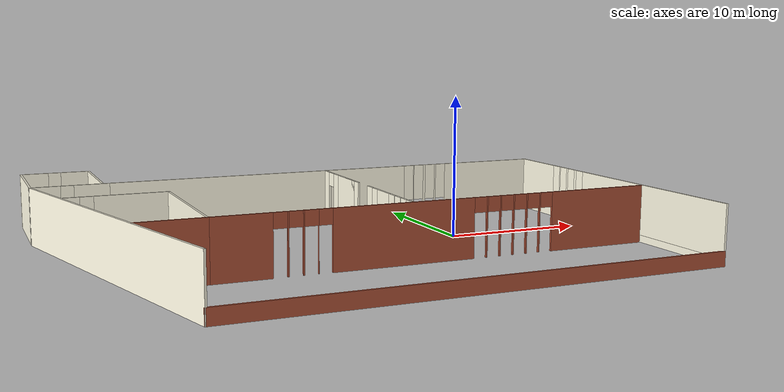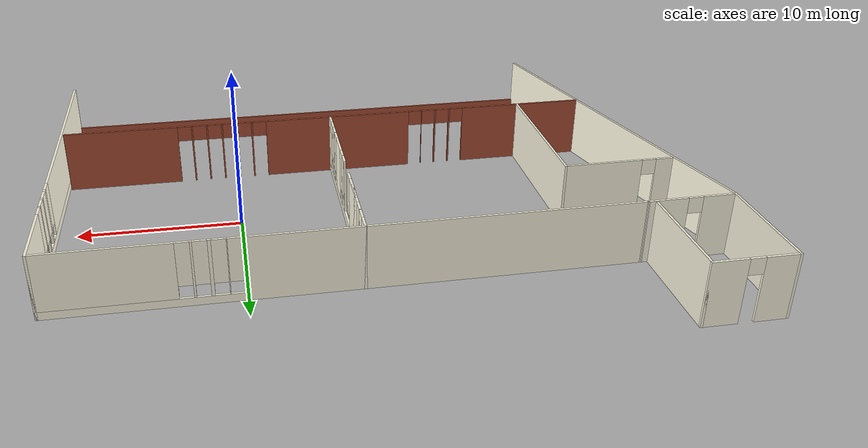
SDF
<?xml version='1.0'?>
<sdf version='1.6'>
  <model name='myoffice'>
    <pose frame=''>-8.43642 0.2686 0 0 -0 0</pose>
    <link name='Wall_0'>
      <pose frame=''>2.68742 8.1604 0 0 -0 0</pose>
      <visual name='Wall_0_Visual_0'>
        <pose frame=''>-5.55834 0 2 0 -0 0</pose>
        <geometry>
          <box>
            <size>22.8833 0.15 4</size>
          </box>
        </geometry>
        <material>
          <script>
            <uri>file://media/materials/scripts/gazebo.material</uri>
            <name>Gazebo/Grey</name>
          </script>
          <ambient>1 0.980392 0.894118 1</ambient>
        </material>
        <meta>
          <layer>0</layer>
        </meta>
      </visual>
      <collision name='Wall_0_Collision_0'>
        <geometry>
          <box>
            <size>22.8833 0.15 4</size>
          </box>
        </geometry>
        <pose frame=''>-5.55834 0 2 0 -0 0</pose>
      </collision>
      <visual name='Wall_0_Visual_1'>
        <pose frame=''>11.4417 0 0.25 0 -0 0</pose>
        <geometry>
          <box>
            <size>11.1167 0.15 0.5</size>
          </box>
        </geometry>
        <material>
          <script>
            <uri>file://media/materials/scripts/gazebo.material</uri>
            <name>Gazebo/Grey</name>
          </script>
          <ambient>1 0.980392 0.894118 1</ambient>
        </material>
        <meta>
          <layer>0</layer>
        </meta>
      </visual>
      <collision name='Wall_0_Collision_1'>
        <geometry>
          <box>
            <size>11.1167 0.15 0.5</size>
          </box>
        </geometry>
        <pose frame=''>11.4417 0 0.25 0 -0 0</pose>
      </collision>
      <visual name='Wall_0_Visual_2'>
        <pose frame=''>6.70786 0 2.25 0 -0 0</pose>
        <geometry>
          <box>
            <size>0.049085 0.15 3.5</size>
          </box>
        </geometry>
        <material>
          <script>
            <uri>file://media/materials/scripts/gazebo.material</uri>
            <name>Gazebo/Grey</name>
          </script>
          <ambient>1 0.980392 0.894118 1</ambient>
        </material>
        <meta>
          <layer>0</layer>
        </meta>
      </visual>
      <collision name='Wall_0_Collision_2'>
        <geometry>
          <box>
            <size>0.049085 0.15 3.5</size>
          </box>
        </geometry>
        <pose frame=''>6.70786 0 2.25 0 -0 0</pose>
      </collision>
      <visual name='Wall_0_Visual_3'>
        <pose frame=''>7.6277 0 2.25 0 -0 0</pose>
        <geometry>
          <box>
            <size>0.190599 0.15 3.5</size>
          </box>
        </geometry>
        <material>
          <script>
            <uri>file://media/materials/scripts/gazebo.material</uri>
            <name>Gazebo/Grey</name>
          </script>
          <ambient>1 0.980392 0.894118 1</ambient>
        </material>
        <meta>
          <layer>0</layer>
        </meta>
      </visual>
      <collision name='Wall_0_Collision_3'>
        <geometry>
          <box>
            <size>0.190599 0.15 3.5</size>
          </box>
        </geometry>
        <pose frame=''>7.6277 0 2.25 0 -0 0</pose>
      </collision>
      <visual name='Wall_0_Visual_4'>
        <pose frame=''>8.58292 0 2.25 0 -0 0</pose>
        <geometry>
          <box>
            <size>0.119842 0.15 3.5</size>
          </box>
        </geometry>
        <material>
          <script>
            <uri>file://media/materials/scripts/gazebo.material</uri>
            <name>Gazebo/Grey</name>
          </script>
          <ambient>1 0.980392 0.894118 1</ambient>
        </material>
        <meta>
          <layer>0</layer>
        </meta>
      </visual>
      <collision name='Wall_0_Collision_4'>
        <geometry>
          <box>
            <size>0.119842 0.15 3.5</size>
          </box>
        </geometry>
        <pose frame=''>8.58292 0 2.25 0 -0 0</pose>
      </collision>
      <visual name='Wall_0_Visual_5'>
        <pose frame=''>13.2214 0 2.25 0 -0 0</pose>
        <geometry>
          <box>
            <size>7.55716 0.15 3.5</size>
          </box>
        </geometry>
        <material>
          <script>
            <uri>file://media/materials/scripts/gazebo.material</uri>
            <name>Gazebo/Grey</name>
          </script>
          <ambient>1 0.980392 0.894118 1</ambient>
        </material>
        <meta>
          <layer>0</layer>
        </meta>
      </visual>
      <collision name='Wall_0_Collision_5'>
        <geometry>
          <box>
            <size>7.55716 0.15 3.5</size>
          </box>
        </geometry>
        <pose frame=''>13.2214 0 2.25 0 -0 0</pose>
      </collision>
      <visual name='Wall_0_Visual_6'>
        <pose frame=''>6.28331 0 2.65 0 -0 0</pose>
        <geometry>
          <box>
            <size>0.8 0.15 2.7</size>
          </box>
        </geometry>
        <material>
          <script>
            <uri>file://media/materials/scripts/gazebo.material</uri>
            <name>Gazebo/Grey</name>
          </script>
          <ambient>1 0.980392 0.894118 1</ambient>
        </material>
        <meta>
          <layer>0</layer>
        </meta>
      </visual>
      <collision name='Wall_0_Collision_6'>
        <geometry>
          <box>
            <size>0.8 0.15 2.7</size>
          </box>
        </geometry>
        <pose frame=''>6.28331 0 2.65 0 -0 0</pose>
      </collision>
      <visual name='Wall_0_Visual_7'>
        <pose frame=''>7.1324 0 2.65 0 -0 0</pose>
        <geometry>
          <box>
            <size>0.8 0.15 2.7</size>
          </box>
        </geometry>
        <material>
          <script>
            <uri>file://media/materials/scripts/gazebo.material</uri>
            <name>Gazebo/Grey</name>
          </script>
          <ambient>1 0.980392 0.894118 1</ambient>
        </material>
        <meta>
          <layer>0</layer>
        </meta>
      </visual>
      <collision name='Wall_0_Collision_7'>
        <geometry>
          <box>
            <size>0.8 0.15 2.7</size>
          </box>
        </geometry>
        <pose frame=''>7.1324 0 2.65 0 -0 0</pose>
      </collision>
      <visual name='Wall_0_Visual_8'>
        <pose frame=''>8.123 0 2.65 0 -0 0</pose>
        <geometry>
          <box>
            <size>0.8 0.15 2.7</size>
          </box>
        </geometry>
        <material>
          <script>
            <uri>file://media/materials/scripts/gazebo.material</uri>
            <name>Gazebo/Grey</name>
          </script>
          <ambient>1 0.980392 0.894118 1</ambient>
        </material>
        <meta>
          <layer>0</layer>
        </meta>
      </visual>
      <collision name='Wall_0_Collision_8'>
        <geometry>
          <box>
            <size>0.8 0.15 2.7</size>
          </box>
        </geometry>
        <pose frame=''>8.123 0 2.65 0 -0 0</pose>
      </collision>
      <visual name='Wall_0_Visual_9'>
        <pose frame=''>9.04284 0 2.65 0 -0 0</pose>
        <geometry>
          <box>
            <size>0.8 0.15 2.7</size>
          </box>
        </geometry>
        <material>
          <script>
            <uri>file://media/materials/scripts/gazebo.material</uri>
            <name>Gazebo/Grey</name>
          </script>
          <ambient>1 0.980392 0.894118 1</ambient>
        </material>
        <meta>
          <layer>0</layer>
        </meta>
      </visual>
      <collision name='Wall_0_Collision_9'>
        <geometry>
          <box>
            <size>0.8 0.15 2.7</size>
          </box>
        </geometry>
        <pose frame=''>9.04284 0 2.65 0 -0 0</pose>
      </collision>
    </link>
    <link name='Wall_1'>
      <pose frame=''>19.6124 -3.2646 0 0 0 -1.5708</pose>
      <visual name='Wall_1_Visual_0'>
        <pose frame=''>-9.29214 0 2 0 -0 0</pose>
        <geometry>
          <box>
            <size>4.41572 0.15 4</size>
          </box>
        </geometry>
        <material>
          <script>
            <uri>file://media/materials/scripts/gazebo.material</uri>
            <name>Gazebo/Grey</name>
          </script>
          <ambient>1 0.980392 0.894118 1</ambient>
        </material>
        <meta>
          <layer>0</layer>
        </meta>
      </visual>
      <collision name='Wall_1_Collision_0'>
        <geometry>
          <box>
            <size>4.41572 0.15 4</size>
          </box>
        </geometry>
        <pose frame=''>-9.29214 0 2 0 -0 0</pose>
      </collision>
      <visual name='Wall_1_Visual_1'>
        <pose frame=''>2.20786 0 0.25 0 -0 0</pose>
        <geometry>
          <box>
            <size>18.5843 0.15 0.5</size>
          </box>
        </geometry>
        <material>
          <script>
            <uri>file://media/materials/scripts/gazebo.material</uri>
            <name>Gazebo/Grey</name>
          </script>
          <ambient>1 0.980392 0.894118 1</ambient>
        </material>
        <meta>
          <layer>0</layer>
        </meta>
      </visual>
      <collision name='Wall_1_Collision_1'>
        <geometry>
          <box>
            <size>18.5843 0.15 0.5</size>
          </box>
        </geometry>
        <pose frame=''>2.20786 0 0.25 0 -0 0</pose>
      </collision>
      <visual name='Wall_1_Visual_2'>
        <pose frame=''>-6.22436 0 2.25 0 -0 0</pose>
        <geometry>
          <box>
            <size>0.119842 0.15 3.5</size>
          </box>
        </geometry>
        <material>
          <script>
            <uri>file://media/materials/scripts/gazebo.material</uri>
            <name>Gazebo/Grey</name>
          </script>
          <ambient>1 0.980392 0.894118 1</ambient>
        </material>
        <meta>
          <layer>0</layer>
        </meta>
      </visual>
      <collision name='Wall_1_Collision_2'>
        <geometry>
          <box>
            <size>0.119842 0.15 3.5</size>
          </box>
        </geometry>
        <pose frame=''>-6.22436 0 2.25 0 -0 0</pose>
      </collision>
      <visual name='Wall_1_Visual_3'>
        <pose frame=''>-5.26914 0 2.25 0 -0 0</pose>
        <geometry>
          <box>
            <size>0.190599 0.15 3.5</size>
          </box>
        </geometry>
        <material>
          <script>
            <uri>file://media/materials/scripts/gazebo.material</uri>
            <name>Gazebo/Grey</name>
          </script>
          <ambient>1 0.980392 0.894118 1</ambient>
        </material>
        <meta>
          <layer>0</layer>
        </meta>
      </visual>
      <collision name='Wall_1_Collision_3'>
        <geometry>
          <box>
            <size>0.190599 0.15 3.5</size>
          </box>
        </geometry>
        <pose frame=''>-5.26914 0 2.25 0 -0 0</pose>
      </collision>
      <visual name='Wall_1_Visual_4'>
        <pose frame=''>-4.24316 0 2.25 0 -0 0</pose>
        <geometry>
          <box>
            <size>0.261356 0.15 3.5</size>
          </box>
        </geometry>
        <material>
          <script>
            <uri>file://media/materials/scripts/gazebo.material</uri>
            <name>Gazebo/Grey</name>
          </script>
          <ambient>1 0.980392 0.894118 1</ambient>
        </material>
        <meta>
          <layer>0</layer>
        </meta>
      </visual>
      <collision name='Wall_1_Collision_4'>
        <geometry>
          <box>
            <size>0.261356 0.15 3.5</size>
          </box>
        </geometry>
        <pose frame=''>-4.24316 0 2.25 0 -0 0</pose>
      </collision>
      <visual name='Wall_1_Visual_5'>
        <pose frame=''>4.09376 0 2.25 0 -0 0</pose>
        <geometry>
          <box>
            <size>14.8125 0.15 3.5</size>
          </box>
        </geometry>
        <material>
          <script>
            <uri>file://media/materials/scripts/gazebo.material</uri>
            <name>Gazebo/Grey</name>
          </script>
          <ambient>1 0.980392 0.894118 1</ambient>
        </material>
        <meta>
          <layer>0</layer>
        </meta>
      </visual>
      <collision name='Wall_1_Collision_5'>
        <geometry>
          <box>
            <size>14.8125 0.15 3.5</size>
          </box>
        </geometry>
        <pose frame=''>4.09376 0 2.25 0 -0 0</pose>
      </collision>
      <visual name='Wall_1_Visual_6'>
        <pose frame=''>-6.68428 0 2.65 0 -0 0</pose>
        <geometry>
          <box>
            <size>0.8 0.15 2.7</size>
          </box>
        </geometry>
        <material>
          <script>
            <uri>file://media/materials/scripts/gazebo.material</uri>
            <name>Gazebo/Grey</name>
          </script>
          <ambient>1 0.980392 0.894118 1</ambient>
        </material>
        <meta>
          <layer>0</layer>
        </meta>
      </visual>
      <collision name='Wall_1_Collision_6'>
        <geometry>
          <box>
            <size>0.8 0.15 2.7</size>
          </box>
        </geometry>
        <pose frame=''>-6.68428 0 2.65 0 -0 0</pose>
      </collision>
      <visual name='Wall_1_Visual_7'>
        <pose frame=''>-5.76444 0 2.65 0 -0 0</pose>
        <geometry>
          <box>
            <size>0.8 0.15 2.7</size>
          </box>
        </geometry>
        <material>
          <script>
            <uri>file://media/materials/scripts/gazebo.material</uri>
            <name>Gazebo/Grey</name>
          </script>
          <ambient>1 0.980392 0.894118 1</ambient>
        </material>
        <meta>
          <layer>0</layer>
        </meta>
      </visual>
      <collision name='Wall_1_Collision_7'>
        <geometry>
          <box>
            <size>0.8 0.15 2.7</size>
          </box>
        </geometry>
        <pose frame=''>-5.76444 0 2.65 0 -0 0</pose>
      </collision>
      <visual name='Wall_1_Visual_8'>
        <pose frame=''>-4.77384 0 2.65 0 -0 0</pose>
        <geometry>
          <box>
            <size>0.8 0.15 2.7</size>
          </box>
        </geometry>
        <material>
          <script>
            <uri>file://media/materials/scripts/gazebo.material</uri>
            <name>Gazebo/Grey</name>
          </script>
          <ambient>1 0.980392 0.894118 1</ambient>
        </material>
        <meta>
          <layer>0</layer>
        </meta>
      </visual>
      <collision name='Wall_1_Collision_8'>
        <geometry>
          <box>
            <size>0.8 0.15 2.7</size>
          </box>
        </geometry>
        <pose frame=''>-4.77384 0 2.65 0 -0 0</pose>
      </collision>
      <visual name='Wall_1_Visual_9'>
        <pose frame=''>-3.71248 0 2.65 0 -0 0</pose>
        <geometry>
          <box>
            <size>0.8 0.15 2.7</size>
          </box>
        </geometry>
        <material>
          <script>
            <uri>file://media/materials/scripts/gazebo.material</uri>
            <name>Gazebo/Grey</name>
          </script>
          <ambient>1 0.980392 0.894118 1</ambient>
        </material>
        <meta>
          <layer>0</layer>
        </meta>
      </visual>
      <collision name='Wall_1_Collision_9'>
        <geometry>
          <box>
            <size>0.8 0.15 2.7</size>
          </box>
        </geometry>
        <pose frame=''>-3.71248 0 2.65 0 -0 0</pose>
      </collision>
    </link>
    <link name='Wall_11'>
      <pose frame=''>-14.6336 3.0664 0 0 -0 0</pose>
      <visual name='Wall_11_Visual_0'>
        <pose frame=''>-2.94452 0 2 0 -0 0</pose>
        <geometry>
          <box>
            <size>1.11096 0.15 4</size>
          </box>
        </geometry>
        <material>
          <script>
            <uri>file://media/materials/scripts/gazebo.material</uri>
            <name>Gazebo/Grey</name>
          </script>
          <ambient>1 0.980392 0.894118 1</ambient>
        </material>
        <meta>
          <layer>0</layer>
        </meta>
      </visual>
      <collision name='Wall_11_Collision_0'>
        <geometry>
          <box>
            <size>1.11096 0.15 4</size>
          </box>
        </geometry>
        <pose frame=''>-2.94452 0 2 0 -0 0</pose>
      </collision>
      <visual name='Wall_11_Visual_1'>
        <pose frame=''>1.00548 0 2 0 -0 0</pose>
        <geometry>
          <box>
            <size>4.98904 0.15 4</size>
          </box>
        </geometry>
        <material>
          <script>
            <uri>file://media/materials/scripts/gazebo.material</uri>
            <name>Gazebo/Grey</name>
          </script>
          <ambient>1 0.980392 0.894118 1</ambient>
        </material>
        <meta>
          <layer>0</layer>
        </meta>
      </visual>
      <collision name='Wall_11_Collision_1'>
        <geometry>
          <box>
            <size>4.98904 0.15 4</size>
          </box>
        </geometry>
        <pose frame=''>1.00548 0 2 0 -0 0</pose>
      </collision>
      <visual name='Wall_11_Visual_2'>
        <pose frame=''>-1.93904 0 3.5 0 -0 0</pose>
        <geometry>
          <box>
            <size>0.9 0.15 1</size>
          </box>
        </geometry>
        <material>
          <script>
            <uri>file://media/materials/scripts/gazebo.material</uri>
            <name>Gazebo/Grey</name>
          </script>
          <ambient>1 0.980392 0.894118 1</ambient>
        </material>
        <meta>
          <layer>0</layer>
        </meta>
      </visual>
      <collision name='Wall_11_Collision_2'>
        <geometry>
          <box>
            <size>0.9 0.15 1</size>
          </box>
        </geometry>
        <pose frame=''>-1.93904 0 3.5 0 -0 0</pose>
      </collision>
    </link>
    <link name='Wall_12'>
      <collision name='Wall_12_Collision'>
        <geometry>
          <box>
            <size>10 0.15 4</size>
          </box>
        </geometry>
        <pose frame=''>0 0 2 0 -0 0</pose>
      </collision>
      <visual name='Wall_12_Visual'>
        <pose frame=''>0 0 2 0 -0 0</pose>
        <geometry>
          <box>
            <size>10 0.15 4</size>
          </box>
        </geometry>
        <material>
          <script>
            <uri>file://media/materials/scripts/gazebo.material</uri>
            <name>Gazebo/Grey</name>
          </script>
          <ambient>1 0.980392 0.894118 1</ambient>
        </material>
        <meta>
          <layer>0</layer>
        </meta>
      </visual>
      <pose frame=''>-11.2086 -1.8586 0 0 0 -1.5708</pose>
    </link>
    <link name='Wall_13'>
      <collision name='Wall_13_Collision'>
        <geometry>
          <box>
            <size>4.5 0.15 4</size>
          </box>
        </geometry>
        <pose frame=''>0 0 2 0 -0 0</pose>
      </collision>
      <visual name='Wall_13_Visual'>
        <pose frame=''>0 0 2 0 -0 0</pose>
        <geometry>
          <box>
            <size>4.5 0.15 4</size>
          </box>
        </geometry>
        <material>
          <script>
            <uri>file://media/materials/scripts/gazebo.material</uri>
            <name>Gazebo/Bricks</name>
          </script>
          <ambient>1 0.980392 0.894118 1</ambient>
        </material>
        <meta>
          <layer>0</layer>
        </meta>
      </visual>
      <pose frame=''>-13.3836 -6.7836 0 0 -0 3.14159</pose>
    </link>
    <link name='Wall_15'>
      <pose frame=''>4.09142 -6.7836 0 0 -0 0</pose>
      <visual name='Wall_15_Visual_0'>
        <pose frame=''>-13.3623 0 2 0 -0 0</pose>
        <geometry>
          <box>
            <size>4.02537 0.15 4</size>
          </box>
        </geometry>
        <material>
          <script>
            <uri>file://media/materials/scripts/gazebo.material</uri>
            <name>Gazebo/Bricks</name>
          </script>
          <ambient>1 0.980392 0.894118 1</ambient>
        </material>
        <meta>
          <layer>0</layer>
        </meta>
      </visual>
      <collision name='Wall_15_Collision_0'>
        <geometry>
          <box>
            <size>4.02537 0.15 4</size>
          </box>
        </geometry>
        <pose frame=''>-13.3623 0 2 0 -0 0</pose>
      </collision>
      <visual name='Wall_15_Visual_1'>
        <pose frame=''>-10.4043 0 2 0 -0 0</pose>
        <geometry>
          <box>
            <size>0.090664 0.15 4</size>
          </box>
        </geometry>
        <material>
          <script>
            <uri>file://media/materials/scripts/gazebo.material</uri>
            <name>Gazebo/Bricks</name>
          </script>
          <ambient>1 0.980392 0.894118 1</ambient>
        </material>
        <meta>
          <layer>0</layer>
        </meta>
      </visual>
      <collision name='Wall_15_Collision_1'>
        <geometry>
          <box>
            <size>0.090664 0.15 4</size>
          </box>
        </geometry>
        <pose frame=''>-10.4043 0 2 0 -0 0</pose>
      </collision>
      <visual name='Wall_15_Visual_2'>
        <pose frame=''>-9.4137 0 2 0 -0 0</pose>
        <geometry>
          <box>
            <size>0.090534 0.15 4</size>
          </box>
        </geometry>
        <material>
          <script>
            <uri>file://media/materials/scripts/gazebo.material</uri>
            <name>Gazebo/Bricks</name>
          </script>
          <ambient>1 0.980392 0.894118 1</ambient>
        </material>
        <meta>
          <layer>0</layer>
        </meta>
      </visual>
      <collision name='Wall_15_Collision_2'>
        <geometry>
          <box>
            <size>0.090534 0.15 4</size>
          </box>
        </geometry>
        <pose frame=''>-9.4137 0 2 0 -0 0</pose>
      </collision>
      <visual name='Wall_15_Visual_3'>
        <pose frame=''>-8.45851 0 2 0 -0 0</pose>
        <geometry>
          <box>
            <size>0.019842 0.15 4</size>
          </box>
        </geometry>
        <material>
          <script>
            <uri>file://media/materials/scripts/gazebo.material</uri>
            <name>Gazebo/Bricks</name>
          </script>
          <ambient>1 0.980392 0.894118 1</ambient>
        </material>
        <meta>
          <layer>0</layer>
        </meta>
      </visual>
      <collision name='Wall_15_Collision_3'>
        <geometry>
          <box>
            <size>0.019842 0.15 4</size>
          </box>
        </geometry>
        <pose frame=''>-8.45851 0 2 0 -0 0</pose>
      </collision>
      <visual name='Wall_15_Visual_4'>
        <pose frame=''>-2.65643 0 2 0 -0 0</pose>
        <geometry>
          <box>
            <size>9.78432 0.15 4</size>
          </box>
        </geometry>
        <material>
          <script>
            <uri>file://media/materials/scripts/gazebo.material</uri>
            <name>Gazebo/Bricks</name>
          </script>
          <ambient>1 0.980392 0.894118 1</ambient>
        </material>
        <meta>
          <layer>0</layer>
        </meta>
      </visual>
      <collision name='Wall_15_Collision_4'>
        <geometry>
          <box>
            <size>9.78432 0.15 4</size>
          </box>
        </geometry>
        <pose frame=''>-2.65643 0 2 0 -0 0</pose>
      </collision>
      <visual name='Wall_15_Visual_5'>
        <pose frame=''>3.18107 0 2 0 -0 0</pose>
        <geometry>
          <box>
            <size>0.090681 0.15 4</size>
          </box>
        </geometry>
        <material>
          <script>
            <uri>file://media/materials/scripts/gazebo.material</uri>
            <name>Gazebo/Bricks</name>
          </script>
          <ambient>1 0.980392 0.894118 1</ambient>
        </material>
        <meta>
          <layer>0</layer>
        </meta>
      </visual>
      <collision name='Wall_15_Collision_5'>
        <geometry>
          <box>
            <size>0.090681 0.15 4</size>
          </box>
        </geometry>
        <pose frame=''>3.18107 0 2 0 -0 0</pose>
      </collision>
      <visual name='Wall_15_Visual_6'>
        <pose frame=''>4.17167 0 2 0 -0 0</pose>
        <geometry>
          <box>
            <size>0.090516 0.15 4</size>
          </box>
        </geometry>
        <material>
          <script>
            <uri>file://media/materials/scripts/gazebo.material</uri>
            <name>Gazebo/Bricks</name>
          </script>
          <ambient>1 0.980392 0.894118 1</ambient>
        </material>
        <meta>
          <layer>0</layer>
        </meta>
      </visual>
      <collision name='Wall_15_Collision_6'>
        <geometry>
          <box>
            <size>0.090516 0.15 4</size>
          </box>
        </geometry>
        <pose frame=''>4.17167 0 2 0 -0 0</pose>
      </collision>
      <visual name='Wall_15_Visual_7'>
        <pose frame=''>5.16222 0 2 0 -0 0</pose>
        <geometry>
          <box>
            <size>0.090599 0.15 4</size>
          </box>
        </geometry>
        <material>
          <script>
            <uri>file://media/materials/scripts/gazebo.material</uri>
            <name>Gazebo/Bricks</name>
          </script>
          <ambient>1 0.980392 0.894118 1</ambient>
        </material>
        <meta>
          <layer>0</layer>
        </meta>
      </visual>
      <collision name='Wall_15_Collision_7'>
        <geometry>
          <box>
            <size>0.090599 0.15 4</size>
          </box>
        </geometry>
        <pose frame=''>5.16222 0 2 0 -0 0</pose>
      </collision>
      <visual name='Wall_15_Visual_8'>
        <pose frame=''>6.15282 0 2 0 -0 0</pose>
        <geometry>
          <box>
            <size>0.090599 0.15 4</size>
          </box>
        </geometry>
        <material>
          <script>
            <uri>file://media/materials/scripts/gazebo.material</uri>
            <name>Gazebo/Bricks</name>
          </script>
          <ambient>1 0.980392 0.894118 1</ambient>
        </material>
        <meta>
          <layer>0</layer>
        </meta>
      </visual>
      <collision name='Wall_15_Collision_8'>
        <geometry>
          <box>
            <size>0.090599 0.15 4</size>
          </box>
        </geometry>
        <pose frame=''>6.15282 0 2 0 -0 0</pose>
      </collision>
      <visual name='Wall_15_Visual_9'>
        <pose frame=''>7.14342 0 2 0 -0 0</pose>
        <geometry>
          <box>
            <size>0.090599 0.15 4</size>
          </box>
        </geometry>
        <material>
          <script>
            <uri>file://media/materials/scripts/gazebo.material</uri>
            <name>Gazebo/Bricks</name>
          </script>
          <ambient>1 0.980392 0.894118 1</ambient>
        </material>
        <meta>
          <layer>0</layer>
        </meta>
      </visual>
      <collision name='Wall_15_Collision_9'>
        <geometry>
          <box>
            <size>0.090599 0.15 4</size>
          </box>
        </geometry>
        <pose frame=''>7.14342 0 2 0 -0 0</pose>
      </collision>
      <visual name='Wall_15_Visual_10'>
        <pose frame=''>11.7319 0 2 0 -0 0</pose>
        <geometry>
          <box>
            <size>7.28628 0.15 4</size>
          </box>
        </geometry>
        <material>
          <script>
            <uri>file://media/materials/scripts/gazebo.material</uri>
            <name>Gazebo/Bricks</name>
          </script>
          <ambient>1 0.980392 0.894118 1</ambient>
        </material>
        <meta>
          <layer>0</layer>
        </meta>
      </visual>
      <collision name='Wall_15_Collision_10'>
        <geometry>
          <box>
            <size>7.28628 0.15 4</size>
          </box>
        </geometry>
        <pose frame=''>11.7319 0 2 0 -0 0</pose>
      </collision>
      <visual name='Wall_15_Visual_11'>
        <pose frame=''>-10.8996 0 3.5 0 -0 0</pose>
        <geometry>
          <box>
            <size>0.9 0.15 1</size>
          </box>
        </geometry>
        <material>
          <script>
            <uri>file://media/materials/scripts/gazebo.material</uri>
            <name>Gazebo/Bricks</name>
          </script>
          <ambient>1 0.980392 0.894118 1</ambient>
        </material>
        <meta>
          <layer>0</layer>
        </meta>
      </visual>
      <collision name='Wall_15_Collision_11'>
        <geometry>
          <box>
            <size>0.9 0.15 1</size>
          </box>
        </geometry>
        <pose frame=''>-10.8996 0 3.5 0 -0 0</pose>
      </collision>
      <visual name='Wall_15_Visual_12'>
        <pose frame=''>-9.90897 0 3.5 0 -0 0</pose>
        <geometry>
          <box>
            <size>0.9 0.15 1</size>
          </box>
        </geometry>
        <material>
          <script>
            <uri>file://media/materials/scripts/gazebo.material</uri>
            <name>Gazebo/Bricks</name>
          </script>
          <ambient>1 0.980392 0.894118 1</ambient>
        </material>
        <meta>
          <layer>0</layer>
        </meta>
      </visual>
      <collision name='Wall_15_Collision_12'>
        <geometry>
          <box>
            <size>0.9 0.15 1</size>
          </box>
        </geometry>
        <pose frame=''>-9.90897 0 3.5 0 -0 0</pose>
      </collision>
      <visual name='Wall_15_Visual_13'>
        <pose frame=''>-8.91843 0 3.5 0 -0 0</pose>
        <geometry>
          <box>
            <size>0.9 0.15 1</size>
          </box>
        </geometry>
        <material>
          <script>
            <uri>file://media/materials/scripts/gazebo.material</uri>
            <name>Gazebo/Bricks</name>
          </script>
          <ambient>1 0.980392 0.894118 1</ambient>
        </material>
        <meta>
          <layer>0</layer>
        </meta>
      </visual>
      <collision name='Wall_15_Collision_13'>
        <geometry>
          <box>
            <size>0.9 0.15 1</size>
          </box>
        </geometry>
        <pose frame=''>-8.91843 0 3.5 0 -0 0</pose>
      </collision>
      <visual name='Wall_15_Visual_14'>
        <pose frame=''>-7.99859 0 3.5 0 -0 0</pose>
        <geometry>
          <box>
            <size>0.9 0.15 1</size>
          </box>
        </geometry>
        <material>
          <script>
            <uri>file://media/materials/scripts/gazebo.material</uri>
            <name>Gazebo/Bricks</name>
          </script>
          <ambient>1 0.980392 0.894118 1</ambient>
        </material>
        <meta>
          <layer>0</layer>
        </meta>
      </visual>
      <collision name='Wall_15_Collision_14'>
        <geometry>
          <box>
            <size>0.9 0.15 1</size>
          </box>
        </geometry>
        <pose frame=''>-7.99859 0 3.5 0 -0 0</pose>
      </collision>
      <visual name='Wall_15_Visual_15'>
        <pose frame=''>2.68573 0 3.5 0 -0 0</pose>
        <geometry>
          <box>
            <size>0.9 0.15 1</size>
          </box>
        </geometry>
        <material>
          <script>
            <uri>file://media/materials/scripts/gazebo.material</uri>
            <name>Gazebo/Bricks</name>
          </script>
          <ambient>1 0.980392 0.894118 1</ambient>
        </material>
        <meta>
          <layer>0</layer>
        </meta>
      </visual>
      <collision name='Wall_15_Collision_15'>
        <geometry>
          <box>
            <size>0.9 0.15 1</size>
          </box>
        </geometry>
        <pose frame=''>2.68573 0 3.5 0 -0 0</pose>
      </collision>
      <visual name='Wall_15_Visual_16'>
        <pose frame=''>3.67641 0 3.5 0 -0 0</pose>
        <geometry>
          <box>
            <size>0.9 0.15 1</size>
          </box>
        </geometry>
        <material>
          <script>
            <uri>file://media/materials/scripts/gazebo.material</uri>
            <name>Gazebo/Bricks</name>
          </script>
          <ambient>1 0.980392 0.894118 1</ambient>
        </material>
        <meta>
          <layer>0</layer>
        </meta>
      </visual>
      <collision name='Wall_15_Collision_16'>
        <geometry>
          <box>
            <size>0.9 0.15 1</size>
          </box>
        </geometry>
        <pose frame=''>3.67641 0 3.5 0 -0 0</pose>
      </collision>
      <visual name='Wall_15_Visual_17'>
        <pose frame=''>4.66692 0 3.5 0 -0 0</pose>
        <geometry>
          <box>
            <size>0.9 0.15 1</size>
          </box>
        </geometry>
        <material>
          <script>
            <uri>file://media/materials/scripts/gazebo.material</uri>
            <name>Gazebo/Bricks</name>
          </script>
          <ambient>1 0.980392 0.894118 1</ambient>
        </material>
        <meta>
          <layer>0</layer>
        </meta>
      </visual>
      <collision name='Wall_15_Collision_17'>
        <geometry>
          <box>
            <size>0.9 0.15 1</size>
          </box>
        </geometry>
        <pose frame=''>4.66692 0 3.5 0 -0 0</pose>
      </collision>
      <visual name='Wall_15_Visual_18'>
        <pose frame=''>5.65752 0 3.5 0 -0 0</pose>
        <geometry>
          <box>
            <size>0.9 0.15 1</size>
          </box>
        </geometry>
        <material>
          <script>
            <uri>file://media/materials/scripts/gazebo.material</uri>
            <name>Gazebo/Bricks</name>
          </script>
          <ambient>1 0.980392 0.894118 1</ambient>
        </material>
        <meta>
          <layer>0</layer>
        </meta>
      </visual>
      <collision name='Wall_15_Collision_18'>
        <geometry>
          <box>
            <size>0.9 0.15 1</size>
          </box>
        </geometry>
        <pose frame=''>5.65752 0 3.5 0 -0 0</pose>
      </collision>
      <visual name='Wall_15_Visual_19'>
        <pose frame=''>6.64812 0 3.5 0 -0 0</pose>
        <geometry>
          <box>
            <size>0.9 0.15 1</size>
          </box>
        </geometry>
        <material>
          <script>
            <uri>file://media/materials/scripts/gazebo.material</uri>
            <name>Gazebo/Bricks</name>
          </script>
          <ambient>1 0.980392 0.894118 1</ambient>
        </material>
        <meta>
          <layer>0</layer>
        </meta>
      </visual>
      <collision name='Wall_15_Collision_19'>
        <geometry>
          <box>
            <size>0.9 0.15 1</size>
          </box>
        </geometry>
        <pose frame=''>6.64812 0 3.5 0 -0 0</pose>
      </collision>
      <visual name='Wall_15_Visual_20'>
        <pose frame=''>7.63872 0 3.5 0 -0 0</pose>
        <geometry>
          <box>
            <size>0.9 0.15 1</size>
          </box>
        </geometry>
        <material>
          <script>
            <uri>file://media/materials/scripts/gazebo.material</uri>
            <name>Gazebo/Bricks</name>
          </script>
          <ambient>1 0.980392 0.894118 1</ambient>
        </material>
        <meta>
          <layer>0</layer>
        </meta>
      </visual>
      <collision name='Wall_15_Collision_20'>
        <geometry>
          <box>
            <size>0.9 0.15 1</size>
          </box>
        </geometry>
        <pose frame=''>7.63872 0 3.5 0 -0 0</pose>
      </collision>
    </link>
    <link name='Wall_17'>
      <pose frame=''>1.96542 0.7354 0 0 0 -1.5708</pose>
      <visual name='Wall_17_Visual_0'>
        <pose frame=''>-6.97993 0 2 0 -0 0</pose>
        <geometry>
          <box>
            <size>1.04014 0.15 4</size>
          </box>
        </geometry>
        <material>
          <script>
            <uri>file://media/materials/scripts/gazebo.material</uri>
            <name>Gazebo/Grey</name>
          </script>
          <ambient>1 0.980392 0.894118 1</ambient>
        </material>
        <meta>
          <layer>0</layer>
        </meta>
      </visual>
      <collision name='Wall_17_Collision_0'>
        <geometry>
          <box>
            <size>1.04014 0.15 4</size>
          </box>
        </geometry>
        <pose frame=''>-6.97993 0 2 0 -0 0</pose>
      </collision>
      <visual name='Wall_17_Visual_1'>
        <pose frame=''>-3.64988 0 2 0 -0 0</pose>
        <geometry>
          <box>
            <size>3.81997 0.15 4</size>
          </box>
        </geometry>
        <material>
          <script>
            <uri>file://media/materials/scripts/gazebo.material</uri>
            <name>Gazebo/Grey</name>
          </script>
          <ambient>1 0.980392 0.894118 1</ambient>
        </material>
        <meta>
          <layer>0</layer>
        </meta>
      </visual>
      <collision name='Wall_17_Collision_1'>
        <geometry>
          <box>
            <size>3.81997 0.15 4</size>
          </box>
        </geometry>
        <pose frame=''>-3.64988 0 2 0 -0 0</pose>
      </collision>
      <visual name='Wall_17_Visual_2'>
        <pose frame=''>-3.22533 0 2 0 -0 0</pose>
        <geometry>
          <box>
            <size>2.97088 0.15 4</size>
          </box>
        </geometry>
        <material>
          <script>
            <uri>file://media/materials/scripts/gazebo.material</uri>
            <name>Gazebo/Grey</name>
          </script>
          <ambient>1 0.980392 0.894118 1</ambient>
        </material>
        <meta>
          <layer>0</layer>
        </meta>
      </visual>
      <collision name='Wall_17_Collision_2'>
        <geometry>
          <box>
            <size>2.97088 0.15 4</size>
          </box>
        </geometry>
        <pose frame=''>-3.22533 0 2 0 -0 0</pose>
      </collision>
      <visual name='Wall_17_Visual_3'>
        <pose frame=''>2.88005 0 0.25 0 -0 0</pose>
        <geometry>
          <box>
            <size>9.23989 0.15 0.5</size>
          </box>
        </geometry>
        <material>
          <script>
            <uri>file://media/materials/scripts/gazebo.material</uri>
            <name>Gazebo/Grey</name>
          </script>
          <ambient>1 0.980392 0.894118 1</ambient>
        </material>
        <meta>
          <layer>0</layer>
        </meta>
      </visual>
      <collision name='Wall_17_Collision_3'>
        <geometry>
          <box>
            <size>9.23989 0.15 0.5</size>
          </box>
        </geometry>
        <pose frame=''>2.88005 0 0.25 0 -0 0</pose>
      </collision>
      <visual name='Wall_17_Visual_4'>
        <pose frame=''>2.88005 0 0.25 0 -0 0</pose>
        <geometry>
          <box>
            <size>9.23989 0.15 0.5</size>
          </box>
        </geometry>
        <material>
          <script>
            <uri>file://media/materials/scripts/gazebo.material</uri>
            <name>Gazebo/Grey</name>
          </script>
          <ambient>1 0.980392 0.894118 1</ambient>
        </material>
        <meta>
          <layer>0</layer>
        </meta>
      </visual>
      <collision name='Wall_17_Collision_4'>
        <geometry>
          <box>
            <size>9.23989 0.15 0.5</size>
          </box>
        </geometry>
        <pose frame=''>2.88005 0 0.25 0 -0 0</pose>
      </collision>
      <visual name='Wall_17_Visual_5'>
        <pose frame=''>0.570547 0 2.25 0 -0 0</pose>
        <geometry>
          <box>
            <size>0.049085 0.15 3.5</size>
          </box>
        </geometry>
        <material>
          <script>
            <uri>file://media/materials/scripts/gazebo.material</uri>
            <name>Gazebo/Grey</name>
          </script>
          <ambient>1 0.980392 0.894118 1</ambient>
        </material>
        <meta>
          <layer>0</layer>
        </meta>
      </visual>
      <collision name='Wall_17_Collision_5'>
        <geometry>
          <box>
            <size>0.049085 0.15 3.5</size>
          </box>
        </geometry>
        <pose frame=''>0.570547 0 2.25 0 -0 0</pose>
      </collision>
      <visual name='Wall_17_Visual_6'>
        <pose frame=''>1.41963 0 2.25 0 -0 0</pose>
        <geometry>
          <box>
            <size>0.049085 0.15 3.5</size>
          </box>
        </geometry>
        <material>
          <script>
            <uri>file://media/materials/scripts/gazebo.material</uri>
            <name>Gazebo/Grey</name>
          </script>
          <ambient>1 0.980392 0.894118 1</ambient>
        </material>
        <meta>
          <layer>0</layer>
        </meta>
      </visual>
      <collision name='Wall_17_Collision_6'>
        <geometry>
          <box>
            <size>0.049085 0.15 3.5</size>
          </box>
        </geometry>
        <pose frame=''>1.41963 0 2.25 0 -0 0</pose>
      </collision>
      <visual name='Wall_17_Visual_7'>
        <pose frame=''>3.15318 0 2.25 0 -0 0</pose>
        <geometry>
          <box>
            <size>1.81801 0.15 3.5</size>
          </box>
        </geometry>
        <material>
          <script>
            <uri>file://media/materials/scripts/gazebo.material</uri>
            <name>Gazebo/Grey</name>
          </script>
          <ambient>1 0.980392 0.894118 1</ambient>
        </material>
        <meta>
          <layer>0</layer>
        </meta>
      </visual>
      <collision name='Wall_17_Collision_7'>
        <geometry>
          <box>
            <size>1.81801 0.15 3.5</size>
          </box>
        </geometry>
        <pose frame=''>3.15318 0 2.25 0 -0 0</pose>
      </collision>
      <visual name='Wall_17_Visual_8'>
        <pose frame=''>4.92211 0 2.25 0 -0 0</pose>
        <geometry>
          <box>
            <size>0.119842 0.15 3.5</size>
          </box>
        </geometry>
        <material>
          <script>
            <uri>file://media/materials/scripts/gazebo.material</uri>
            <name>Gazebo/Grey</name>
          </script>
          <ambient>1 0.980392 0.894118 1</ambient>
        </material>
        <meta>
          <layer>0</layer>
        </meta>
      </visual>
      <collision name='Wall_17_Collision_8'>
        <geometry>
          <box>
            <size>0.119842 0.15 3.5</size>
          </box>
        </geometry>
        <pose frame=''>4.92211 0 2.25 0 -0 0</pose>
      </collision>
      <visual name='Wall_17_Visual_9'>
        <pose frame=''>5.80657 0 2.25 0 -0 0</pose>
        <geometry>
          <box>
            <size>0.049085 0.15 3.5</size>
          </box>
        </geometry>
        <material>
          <script>
            <uri>file://media/materials/scripts/gazebo.material</uri>
            <name>Gazebo/Grey</name>
          </script>
          <ambient>1 0.980392 0.894118 1</ambient>
        </material>
        <meta>
          <layer>0</layer>
        </meta>
      </visual>
      <collision name='Wall_17_Collision_9'>
        <geometry>
          <box>
            <size>0.049085 0.15 3.5</size>
          </box>
        </geometry>
        <pose frame=''>5.80657 0 2.25 0 -0 0</pose>
      </collision>
      <visual name='Wall_17_Visual_10'>
        <pose frame=''>7.06556 0 2.25 0 -0 0</pose>
        <geometry>
          <box>
            <size>0.868888 0.15 3.5</size>
          </box>
        </geometry>
        <material>
          <script>
            <uri>file://media/materials/scripts/gazebo.material</uri>
            <name>Gazebo/Grey</name>
          </script>
          <ambient>1 0.980392 0.894118 1</ambient>
        </material>
        <meta>
          <layer>0</layer>
        </meta>
      </visual>
      <collision name='Wall_17_Collision_10'>
        <geometry>
          <box>
            <size>0.868888 0.15 3.5</size>
          </box>
        </geometry>
        <pose frame=''>7.06556 0 2.25 0 -0 0</pose>
      </collision>
      <visual name='Wall_17_Visual_11'>
        <pose frame=''>0.570547 0 2.25 0 -0 0</pose>
        <geometry>
          <box>
            <size>0.049085 0.15 3.5</size>
          </box>
        </geometry>
        <material>
          <script>
            <uri>file://media/materials/scripts/gazebo.material</uri>
            <name>Gazebo/Grey</name>
          </script>
          <ambient>1 0.980392 0.894118 1</ambient>
        </material>
        <meta>
          <layer>0</layer>
        </meta>
      </visual>
      <collision name='Wall_17_Collision_11'>
        <geometry>
          <box>
            <size>0.049085 0.15 3.5</size>
          </box>
        </geometry>
        <pose frame=''>0.570547 0 2.25 0 -0 0</pose>
      </collision>
      <visual name='Wall_17_Visual_12'>
        <pose frame=''>1.41963 0 2.25 0 -0 0</pose>
        <geometry>
          <box>
            <size>0.049085 0.15 3.5</size>
          </box>
        </geometry>
        <material>
          <script>
            <uri>file://media/materials/scripts/gazebo.material</uri>
            <name>Gazebo/Grey</name>
          </script>
          <ambient>1 0.980392 0.894118 1</ambient>
        </material>
        <meta>
          <layer>0</layer>
        </meta>
      </visual>
      <collision name='Wall_17_Collision_12'>
        <geometry>
          <box>
            <size>0.049085 0.15 3.5</size>
          </box>
        </geometry>
        <pose frame=''>1.41963 0 2.25 0 -0 0</pose>
      </collision>
      <visual name='Wall_17_Visual_13'>
        <pose frame=''>3.15318 0 2.25 0 -0 0</pose>
        <geometry>
          <box>
            <size>1.81801 0.15 3.5</size>
          </box>
        </geometry>
        <material>
          <script>
            <uri>file://media/materials/scripts/gazebo.material</uri>
            <name>Gazebo/Grey</name>
          </script>
          <ambient>1 0.980392 0.894118 1</ambient>
        </material>
        <meta>
          <layer>0</layer>
        </meta>
      </visual>
      <collision name='Wall_17_Collision_13'>
        <geometry>
          <box>
            <size>1.81801 0.15 3.5</size>
          </box>
        </geometry>
        <pose frame=''>3.15318 0 2.25 0 -0 0</pose>
      </collision>
      <visual name='Wall_17_Visual_14'>
        <pose frame=''>4.92211 0 2.25 0 -0 0</pose>
        <geometry>
          <box>
            <size>0.119842 0.15 3.5</size>
          </box>
        </geometry>
        <material>
          <script>
            <uri>file://media/materials/scripts/gazebo.material</uri>
            <name>Gazebo/Grey</name>
          </script>
          <ambient>1 0.980392 0.894118 1</ambient>
        </material>
        <meta>
          <layer>0</layer>
        </meta>
      </visual>
      <collision name='Wall_17_Collision_14'>
        <geometry>
          <box>
            <size>0.119842 0.15 3.5</size>
          </box>
        </geometry>
        <pose frame=''>4.92211 0 2.25 0 -0 0</pose>
      </collision>
      <visual name='Wall_17_Visual_15'>
        <pose frame=''>5.80657 0 2.25 0 -0 0</pose>
        <geometry>
          <box>
            <size>0.049085 0.15 3.5</size>
          </box>
        </geometry>
        <material>
          <script>
            <uri>file://media/materials/scripts/gazebo.material</uri>
            <name>Gazebo/Grey</name>
          </script>
          <ambient>1 0.980392 0.894118 1</ambient>
        </material>
        <meta>
          <layer>0</layer>
        </meta>
      </visual>
      <collision name='Wall_17_Collision_15'>
        <geometry>
          <box>
            <size>0.049085 0.15 3.5</size>
          </box>
        </geometry>
        <pose frame=''>5.80657 0 2.25 0 -0 0</pose>
      </collision>
      <visual name='Wall_17_Visual_16'>
        <pose frame=''>7.06556 0 2.25 0 -0 0</pose>
        <geometry>
          <box>
            <size>0.868888 0.15 3.5</size>
          </box>
        </geometry>
        <material>
          <script>
            <uri>file://media/materials/scripts/gazebo.material</uri>
            <name>Gazebo/Grey</name>
          </script>
          <ambient>1 0.980392 0.894118 1</ambient>
        </material>
        <meta>
          <layer>0</layer>
        </meta>
      </visual>
      <collision name='Wall_17_Collision_16'>
        <geometry>
          <box>
            <size>0.868888 0.15 3.5</size>
          </box>
        </geometry>
        <pose frame=''>7.06556 0 2.25 0 -0 0</pose>
      </collision>
      <visual name='Wall_17_Visual_17'>
        <pose frame=''>-1.38592 0 2.65 0 -0 0</pose>
        <geometry>
          <box>
            <size>0.707939 0.15 2.7</size>
          </box>
        </geometry>
        <material>
          <script>
            <uri>file://media/materials/scripts/gazebo.material</uri>
            <name>Gazebo/Grey</name>
          </script>
          <ambient>1 0.980392 0.894118 1</ambient>
        </material>
        <meta>
          <layer>0</layer>
        </meta>
      </visual>
      <collision name='Wall_17_Collision_17'>
        <geometry>
          <box>
            <size>0.707939 0.15 2.7</size>
          </box>
        </geometry>
        <pose frame=''>-1.38592 0 2.65 0 -0 0</pose>
      </collision>
      <visual name='Wall_17_Visual_18'>
        <pose frame=''>-1.38592 0 2.65 0 -0 0</pose>
        <geometry>
          <box>
            <size>0.707939 0.15 2.7</size>
          </box>
        </geometry>
        <material>
          <script>
            <uri>file://media/materials/scripts/gazebo.material</uri>
            <name>Gazebo/Grey</name>
          </script>
          <ambient>1 0.980392 0.894118 1</ambient>
        </material>
        <meta>
          <layer>0</layer>
        </meta>
      </visual>
      <collision name='Wall_17_Collision_18'>
        <geometry>
          <box>
            <size>0.707939 0.15 2.7</size>
          </box>
        </geometry>
        <pose frame=''>-1.38592 0 2.65 0 -0 0</pose>
      </collision>
      <visual name='Wall_17_Visual_19'>
        <pose frame=''>0.99509 0 2.65 0 -0 0</pose>
        <geometry>
          <box>
            <size>0.8 0.15 2.7</size>
          </box>
        </geometry>
        <material>
          <script>
            <uri>file://media/materials/scripts/gazebo.material</uri>
            <name>Gazebo/Grey</name>
          </script>
          <ambient>1 0.980392 0.894118 1</ambient>
        </material>
        <meta>
          <layer>0</layer>
        </meta>
      </visual>
      <collision name='Wall_17_Collision_19'>
        <geometry>
          <box>
            <size>0.8 0.15 2.7</size>
          </box>
        </geometry>
        <pose frame=''>0.99509 0 2.65 0 -0 0</pose>
      </collision>
      <visual name='Wall_17_Visual_20'>
        <pose frame=''>1.84417 0 2.65 0 -0 0</pose>
        <geometry>
          <box>
            <size>0.8 0.15 2.7</size>
          </box>
        </geometry>
        <material>
          <script>
            <uri>file://media/materials/scripts/gazebo.material</uri>
            <name>Gazebo/Grey</name>
          </script>
          <ambient>1 0.980392 0.894118 1</ambient>
        </material>
        <meta>
          <layer>0</layer>
        </meta>
      </visual>
      <collision name='Wall_17_Collision_20'>
        <geometry>
          <box>
            <size>0.8 0.15 2.7</size>
          </box>
        </geometry>
        <pose frame=''>1.84417 0 2.65 0 -0 0</pose>
      </collision>
      <visual name='Wall_17_Visual_21'>
        <pose frame=''>4.46219 0 2.65 0 -0 0</pose>
        <geometry>
          <box>
            <size>0.8 0.15 2.7</size>
          </box>
        </geometry>
        <material>
          <script>
            <uri>file://media/materials/scripts/gazebo.material</uri>
            <name>Gazebo/Grey</name>
          </script>
          <ambient>1 0.980392 0.894118 1</ambient>
        </material>
        <meta>
          <layer>0</layer>
        </meta>
      </visual>
      <collision name='Wall_17_Collision_21'>
        <geometry>
          <box>
            <size>0.8 0.15 2.7</size>
          </box>
        </geometry>
        <pose frame=''>4.46219 0 2.65 0 -0 0</pose>
      </collision>
      <visual name='Wall_17_Visual_22'>
        <pose frame=''>5.38203 0 2.65 0 -0 0</pose>
        <geometry>
          <box>
            <size>0.8 0.15 2.7</size>
          </box>
        </geometry>
        <material>
          <script>
            <uri>file://media/materials/scripts/gazebo.material</uri>
            <name>Gazebo/Grey</name>
          </script>
          <ambient>1 0.980392 0.894118 1</ambient>
        </material>
        <meta>
          <layer>0</layer>
        </meta>
      </visual>
      <collision name='Wall_17_Collision_22'>
        <geometry>
          <box>
            <size>0.8 0.15 2.7</size>
          </box>
        </geometry>
        <pose frame=''>5.38203 0 2.65 0 -0 0</pose>
      </collision>
      <visual name='Wall_17_Visual_23'>
        <pose frame=''>6.23111 0 2.65 0 -0 0</pose>
        <geometry>
          <box>
            <size>0.8 0.15 2.7</size>
          </box>
        </geometry>
        <material>
          <script>
            <uri>file://media/materials/scripts/gazebo.material</uri>
            <name>Gazebo/Grey</name>
          </script>
          <ambient>1 0.980392 0.894118 1</ambient>
        </material>
        <meta>
          <layer>0</layer>
        </meta>
      </visual>
      <collision name='Wall_17_Collision_23'>
        <geometry>
          <box>
            <size>0.8 0.15 2.7</size>
          </box>
        </geometry>
        <pose frame=''>6.23111 0 2.65 0 -0 0</pose>
      </collision>
      <visual name='Wall_17_Visual_24'>
        <pose frame=''>0.99509 0 2.65 0 -0 0</pose>
        <geometry>
          <box>
            <size>0.8 0.15 2.7</size>
          </box>
        </geometry>
        <material>
          <script>
            <uri>file://media/materials/scripts/gazebo.material</uri>
            <name>Gazebo/Grey</name>
          </script>
          <ambient>1 0.980392 0.894118 1</ambient>
        </material>
        <meta>
          <layer>0</layer>
        </meta>
      </visual>
      <collision name='Wall_17_Collision_24'>
        <geometry>
          <box>
            <size>0.8 0.15 2.7</size>
          </box>
        </geometry>
        <pose frame=''>0.99509 0 2.65 0 -0 0</pose>
      </collision>
      <visual name='Wall_17_Visual_25'>
        <pose frame=''>1.84417 0 2.65 0 -0 0</pose>
        <geometry>
          <box>
            <size>0.8 0.15 2.7</size>
          </box>
        </geometry>
        <material>
          <script>
            <uri>file://media/materials/scripts/gazebo.material</uri>
            <name>Gazebo/Grey</name>
          </script>
          <ambient>1 0.980392 0.894118 1</ambient>
        </material>
        <meta>
          <layer>0</layer>
        </meta>
      </visual>
      <collision name='Wall_17_Collision_25'>
        <geometry>
          <box>
            <size>0.8 0.15 2.7</size>
          </box>
        </geometry>
        <pose frame=''>1.84417 0 2.65 0 -0 0</pose>
      </collision>
      <visual name='Wall_17_Visual_26'>
        <pose frame=''>4.46219 0 2.65 0 -0 0</pose>
        <geometry>
          <box>
            <size>0.8 0.15 2.7</size>
          </box>
        </geometry>
        <material>
          <script>
            <uri>file://media/materials/scripts/gazebo.material</uri>
            <name>Gazebo/Grey</name>
          </script>
          <ambient>1 0.980392 0.894118 1</ambient>
        </material>
        <meta>
          <layer>0</layer>
        </meta>
      </visual>
      <collision name='Wall_17_Collision_26'>
        <geometry>
          <box>
            <size>0.8 0.15 2.7</size>
          </box>
        </geometry>
        <pose frame=''>4.46219 0 2.65 0 -0 0</pose>
      </collision>
      <visual name='Wall_17_Visual_27'>
        <pose frame=''>5.38203 0 2.65 0 -0 0</pose>
        <geometry>
          <box>
            <size>0.8 0.15 2.7</size>
          </box>
        </geometry>
        <material>
          <script>
            <uri>file://media/materials/scripts/gazebo.material</uri>
            <name>Gazebo/Grey</name>
          </script>
          <ambient>1 0.980392 0.894118 1</ambient>
        </material>
        <meta>
          <layer>0</layer>
        </meta>
      </visual>
      <collision name='Wall_17_Collision_27'>
        <geometry>
          <box>
            <size>0.8 0.15 2.7</size>
          </box>
        </geometry>
        <pose frame=''>5.38203 0 2.65 0 -0 0</pose>
      </collision>
      <visual name='Wall_17_Visual_28'>
        <pose frame=''>6.23111 0 2.65 0 -0 0</pose>
        <geometry>
          <box>
            <size>0.8 0.15 2.7</size>
          </box>
        </geometry>
        <material>
          <script>
            <uri>file://media/materials/scripts/gazebo.material</uri>
            <name>Gazebo/Grey</name>
          </script>
          <ambient>1 0.980392 0.894118 1</ambient>
        </material>
        <meta>
          <layer>0</layer>
        </meta>
      </visual>
      <collision name='Wall_17_Collision_28'>
        <geometry>
          <box>
            <size>0.8 0.15 2.7</size>
          </box>
        </geometry>
        <pose frame=''>6.23111 0 2.65 0 -0 0</pose>
      </collision>
      <visual name='Wall_17_Visual_29'>
        <pose frame=''>-6.03532 0 3.5 0 -0 0</pose>
        <geometry>
          <box>
            <size>0.849085 0.15 1</size>
          </box>
        </geometry>
        <material>
          <script>
            <uri>file://media/materials/scripts/gazebo.material</uri>
            <name>Gazebo/Grey</name>
          </script>
          <ambient>1 0.980392 0.894118 1</ambient>
        </material>
        <meta>
          <layer>0</layer>
        </meta>
      </visual>
      <collision name='Wall_17_Collision_29'>
        <geometry>
          <box>
            <size>0.849085 0.15 1</size>
          </box>
        </geometry>
        <pose frame=''>-6.03532 0 3.5 0 -0 0</pose>
      </collision>
    </link>
    <link name='Wall_2'>
      <collision name='Wall_2_Collision'>
        <geometry>
          <box>
            <size>33.25 0.15 1</size>
          </box>
        </geometry>
        <pose frame=''>0 0 0.5 0 -0 0</pose>
      </collision>
      <visual name='Wall_2_Visual'>
        <pose frame=''>0 0 0.5 0 -0 0</pose>
        <geometry>
          <box>
            <size>33.25 0.15 1</size>
          </box>
        </geometry>
        <material>
          <script>
            <uri>file://media/materials/scripts/gazebo.material</uri>
            <name>Gazebo/Bricks</name>
          </script>
          <ambient>1 0.980392 0.894118 1</ambient>
        </material>
        <meta>
          <layer>0</layer>
        </meta>
      </visual>
      <pose frame=''>3.06242 -14.6896 0 0 -0 3.14159</pose>
    </link>
    <link name='Wall_21'>
      <pose frame=''>-16.9166 8.1334 0 0 0 -3.13151</pose>
      <visual name='Wall_21_Visual_0'>
        <pose frame=''>-1.49066 0 2 0 -0 0</pose>
        <geometry>
          <box>
            <size>2.52694 0.15 4</size>
          </box>
        </geometry>
        <material>
          <script>
            <uri>file://media/materials/scripts/gazebo.material</uri>
            <name>Gazebo/Grey</name>
          </script>
          <ambient>1 0.980392 0.894118 1</ambient>
        </material>
        <meta>
          <layer>0</layer>
        </meta>
      </visual>
      <collision name='Wall_21_Collision_0'>
        <geometry>
          <box>
            <size>2.52694 0.15 4</size>
          </box>
        </geometry>
        <pose frame=''>-1.49066 0 2 0 -0 0</pose>
      </collision>
      <visual name='Wall_21_Visual_1'>
        <pose frame=''>1.71347 0 2 0 -0 0</pose>
        <geometry>
          <box>
            <size>2.08133 0.15 4</size>
          </box>
        </geometry>
        <material>
          <script>
            <uri>file://media/materials/scripts/gazebo.material</uri>
            <name>Gazebo/Grey</name>
          </script>
          <ambient>1 0.980392 0.894118 1</ambient>
        </material>
        <meta>
          <layer>0</layer>
        </meta>
      </visual>
      <collision name='Wall_21_Collision_1'>
        <geometry>
          <box>
            <size>2.08133 0.15 4</size>
          </box>
        </geometry>
        <pose frame=''>1.71347 0 2 0 -0 0</pose>
      </collision>
      <visual name='Wall_21_Visual_2'>
        <pose frame=''>0.222807 0 3.5 0 -0 0</pose>
        <geometry>
          <box>
            <size>0.9 0.15 1</size>
          </box>
        </geometry>
        <material>
          <script>
            <uri>file://media/materials/scripts/gazebo.material</uri>
            <name>Gazebo/Grey</name>
          </script>
          <ambient>1 0.980392 0.894118 1</ambient>
        </material>
        <meta>
          <layer>0</layer>
        </meta>
      </visual>
      <collision name='Wall_21_Collision_2'>
        <geometry>
          <box>
            <size>0.9 0.15 1</size>
          </box>
        </geometry>
        <pose frame=''>0.222807 0 3.5 0 -0 0</pose>
      </collision>
    </link>
    <link name='Wall_3'>
      <collision name='Wall_3_Collision'>
        <geometry>
          <box>
            <size>23.75 0.15 4</size>
          </box>
        </geometry>
        <pose frame=''>0 0 2 0 -0 0</pose>
      </collision>
      <visual name='Wall_3_Visual'>
        <pose frame=''>0 0 2 0 -0 0</pose>
        <geometry>
          <box>
            <size>23.75 0.15 4</size>
          </box>
        </geometry>
        <material>
          <script>
            <uri>file://media/materials/scripts/gazebo.material</uri>
            <name>Gazebo/Grey</name>
          </script>
          <ambient>1 0.980392 0.894118 1</ambient>
        </material>
        <meta>
          <layer>0</layer>
        </meta>
      </visual>
      <pose frame=''>-16.5416 -3.2916 0 0 -0 1.83259</pose>
    </link>
    <link name='Wall_4'>
      <collision name='Wall_4_Collision'>
        <geometry>
          <box>
            <size>6.75 0.15 4</size>
          </box>
        </geometry>
        <pose frame=''>0 0 2 0 -0 0</pose>
      </collision>
      <visual name='Wall_4_Visual'>
        <pose frame=''>0 0 2 0 -0 0</pose>
        <geometry>
          <box>
            <size>6.75 0.15 4</size>
          </box>
        </geometry>
        <material>
          <script>
            <uri>file://media/materials/scripts/gazebo.material</uri>
            <name>Gazebo/Grey</name>
          </script>
          <ambient>1 0.980392 0.894118 1</ambient>
        </material>
        <meta>
          <layer>0</layer>
        </meta>
      </visual>
      <pose frame=''>-19.5956 11.4064 0 0 -0 1.5708</pose>
    </link>
    <link name='Wall_5'>
      <pose frame=''>-17.1516 14.7064 0 0 -0 0</pose>
      <visual name='Wall_5_Visual_0'>
        <pose frame=''>-1.51347 0 2 0 -0 0</pose>
        <geometry>
          <box>
            <size>2.01124 0.15 4</size>
          </box>
        </geometry>
        <material>
          <script>
            <uri>file://media/materials/scripts/gazebo.material</uri>
            <name>Gazebo/Grey</name>
          </script>
          <ambient>1 0.980392 0.894118 1</ambient>
        </material>
        <meta>
          <layer>0</layer>
        </meta>
      </visual>
      <collision name='Wall_5_Collision_0'>
        <geometry>
          <box>
            <size>2.01124 0.15 4</size>
          </box>
        </geometry>
        <pose frame=''>-1.51347 0 2 0 -0 0</pose>
      </collision>
      <visual name='Wall_5_Visual_1'>
        <pose frame=''>1.45562 0 2 0 -0 0</pose>
        <geometry>
          <box>
            <size>2.12694 0.15 4</size>
          </box>
        </geometry>
        <material>
          <script>
            <uri>file://media/materials/scripts/gazebo.material</uri>
            <name>Gazebo/Grey</name>
          </script>
          <ambient>1 0.980392 0.894118 1</ambient>
        </material>
        <meta>
          <layer>0</layer>
        </meta>
      </visual>
      <collision name='Wall_5_Collision_1'>
        <geometry>
          <box>
            <size>2.12694 0.15 4</size>
          </box>
        </geometry>
        <pose frame=''>1.45562 0 2 0 -0 0</pose>
      </collision>
      <visual name='Wall_5_Visual_2'>
        <pose frame=''>-0.057852 0 3.5 0 -0 0</pose>
        <geometry>
          <box>
            <size>0.9 0.15 1</size>
          </box>
        </geometry>
        <material>
          <script>
            <uri>file://media/materials/scripts/gazebo.material</uri>
            <name>Gazebo/Grey</name>
          </script>
          <ambient>1 0.980392 0.894118 1</ambient>
        </material>
        <meta>
          <layer>0</layer>
        </meta>
      </visual>
      <collision name='Wall_5_Collision_2'>
        <geometry>
          <box>
            <size>0.9 0.15 1</size>
          </box>
        </geometry>
        <pose frame=''>-0.057852 0 3.5 0 -0 0</pose>
      </collision>
    </link>
    <link name='Wall_6'>
      <collision name='Wall_6_Collision'>
        <geometry>
          <box>
            <size>6.5 0.15 4</size>
          </box>
        </geometry>
        <pose frame=''>0 0 2 0 -0 0</pose>
      </collision>
      <visual name='Wall_6_Visual'>
        <pose frame=''>0 0 2 0 -0 0</pose>
        <geometry>
          <box>
            <size>6.5 0.15 4</size>
          </box>
        </geometry>
        <material>
          <script>
            <uri>file://media/materials/scripts/gazebo.material</uri>
            <name>Gazebo/Grey</name>
          </script>
          <ambient>1 0.980392 0.894118 1</ambient>
        </material>
        <meta>
          <layer>0</layer>
        </meta>
      </visual>
      <pose frame=''>-14.7076 11.5314 0 0 0 -1.5708</pose>
    </link>
    <static>1</static>
  </model>
</sdf>
